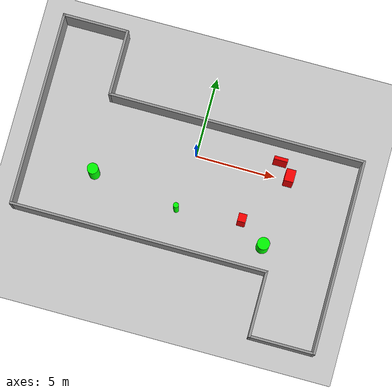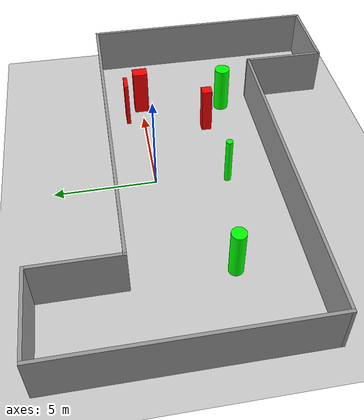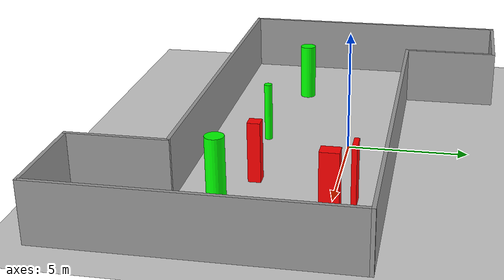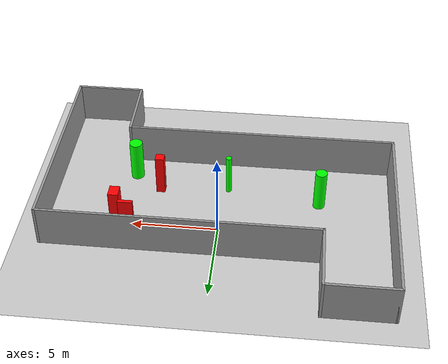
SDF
<sdf version="1.7">
 <world name="default">
  <light name="sun" type="directional">
   <pose>0 0 10 0 -0 0</pose>
   <diffuse>0.8 0.8 0.8 1</diffuse>
   <specular>0.2 0.2 0.2 1</specular>
   <attenuation>
    <range>1000</range>
    <constant>0.9</constant>
    <linear>0.01</linear>
    <quadratic>0.001</quadratic>
   </attenuation>
   <direction>-0.5 0.1 -0.9</direction>
   <spot><inner_angle>0</inner_angle><outer_angle>0</outer_angle><falloff>0</falloff></spot>
  </light>
  <model name="ground_plane">
   <static>1</static>
   <link name="link">
    <collision name="collision">
     <geometry><plane><normal>0 0 1</normal><size>100 100</size></plane></geometry>
     <surface>
      <contact><collide_bitmask>65535</collide_bitmask></contact>
      <friction><ode><mu>100</mu><mu2>50</mu2></ode></friction>
     </surface>
    </collision>
    <visual name="visual">
     <cast_shadows>0</cast_shadows>
     <geometry><plane><normal>0 0 1</normal><size>100 100</size></plane></geometry>
     <material>
      <script><uri>file://media/materials/scripts/gazebo.material</uri><name>Gazebo/Grey</name></script>
     </material>
    </visual>
   </link>
  </model>
  <gravity>0 0 -9.8</gravity>
  <magnetic_field>6e-06 2.3e-05 -4.2e-05</magnetic_field>
  <atmosphere type="adiabatic"/>
  <physics type="ode">
   <max_step_size>0.001</max_step_size>
   <real_time_factor>1</real_time_factor>
   <real_time_update_rate>1000</real_time_update_rate>
  </physics>
  <scene><ambient>0.4 0.4 0.4 1</ambient><background>0.7 0.7 0.7 1</background><shadows>1</shadows></scene>
  <spherical_coordinates>
   <surface_model>EARTH_WGS84</surface_model>
   <latitude_deg>0</latitude_deg>
   <longitude_deg>0</longitude_deg>
   <elevation>0</elevation>
   <heading_deg>0</heading_deg>
  </spherical_coordinates>
  <model name="my_base_walls">
   <link name="Wall_13">
    <collision name="Wall_13_Collision">
     <geometry><box><size>12.15 0.15 2.5</size></box></geometry>
     <pose>0 0 1.25 0 -0 0</pose>
    </collision>
    <visual name="Wall_13_Visual">
     <pose>0 0 1.25 0 -0 0</pose>
     <geometry><box><size>12.15 0.15 2.5</size></box></geometry>
     <material>
      <script><uri>file://media/materials/scripts/gazebo.material</uri><name>Gazebo/Grey</name></script>
      <ambient>1 1 1 1</ambient>
     </material>
     <meta><layer>0</layer></meta>
    </visual>
    <pose>10 -2 0 0 -0 1.5708</pose>
   </link>
   <link name="Wall_15">
    <collision name="Wall_15_Collision">
     <geometry><box><size>16.15 0.15 2.5</size></box></geometry>
     <pose>0 0 1.25 0 -0 0</pose>
    </collision>
    <visual name="Wall_15_Visual">
     <pose>0 0 1.25 0 -0 0</pose>
     <geometry><box><size>16.15 0.15 2.5</size></box></geometry>
     <material>
      <script><uri>file://media/materials/scripts/gazebo.material</uri><name>Gazebo/Grey</name></script>
      <ambient>1 1 1 1</ambient>
     </material>
     <meta><layer>0</layer></meta>
    </visual>
    <pose>2 4 0 0 -0 3.14159</pose>
   </link>
   <link name="Wall_17">
    <collision name="Wall_17_Collision">
     <geometry><box><size>4.15 0.15 2.5</size></box></geometry>
     <pose>0 0 1.25 0 -0 0</pose>
    </collision>
    <visual name="Wall_17_Visual">
     <pose>0 0 1.25 0 -0 0</pose>
     <geometry><box><size>4.15 0.15 2.5</size></box></geometry>
     <material>
      <script><uri>file://media/materials/scripts/gazebo.material</uri><name>Gazebo/Grey</name></script>
      <ambient>1 1 1 1</ambient>
     </material>
     <meta><layer>0</layer></meta>
    </visual>
    <pose>6 -6 0 0 -0 -1.5708</pose>
   </link>
   <link name="Wall_19">
    <collision name="Wall_19_Collision">
     <geometry><box><size>12.15 0.15 2.5</size></box></geometry>
     <pose>0 0 1.25 0 -0 0</pose>
    </collision>
    <visual name="Wall_19_Visual">
     <pose>0 0 1.25 0 -0 0</pose>
     <geometry><box><size>12.15 0.15 2.5</size></box></geometry>
     <material>
      <script><uri>file://media/materials/scripts/gazebo.material</uri><name>Gazebo/Grey</name></script>
      <ambient>1 1 1 1</ambient>
     </material>
     <meta><layer>0</layer></meta>
    </visual>
    <pose>-10 2 0 0 -0 1.5708</pose>
   </link>
   <link name="Wall_21">
    <collision name="Wall_21_Collision">
     <geometry><box><size>4.15 0.15 2.5</size></box></geometry>
     <pose>0 0 1.25 0 -0 0</pose>
    </collision>
    <visual name="Wall_21_Visual">
     <pose>0 0 1.25 0 -0 0</pose>
     <geometry><box><size>4.15 0.15 2.5</size></box></geometry>
     <material>
      <script><uri>file://media/materials/scripts/gazebo.material</uri><name>Gazebo/Grey</name></script>
      <ambient>1 1 1 1</ambient>
     </material>
     <meta><layer>0</layer></meta>
    </visual>
    <pose>-8 8 0 0 -0 0</pose>
   </link>
   <link name="Wall_23">
    <collision name="Wall_23_Collision">
     <geometry><box><size>4.15 0.15 2.5</size></box></geometry>
     <pose>0 0 1.25 0 -0 0</pose>
    </collision>
    <visual name="Wall_23_Visual">
     <pose>0 0 1.25 0 -0 0</pose>
     <geometry><box><size>4.15 0.15 2.5</size></box></geometry>
     <material>
      <script><uri>file://media/materials/scripts/gazebo.material</uri><name>Gazebo/Grey</name></script>
      <ambient>1 1 1 1</ambient>
     </material>
     <meta><layer>0</layer></meta>
    </visual>
    <pose>-6 6 0 0 -0 -1.5708</pose>
   </link>
   <link name="Wall_25">
    <collision name="Wall_25_Collision">
     <geometry><box><size>4.15 0.15 2.5</size></box></geometry>
     <pose>0 0 1.25 0 -0 0</pose>
    </collision>
    <visual name="Wall_25_Visual">
     <pose>0 0 1.25 0 -0 0</pose>
     <geometry><box><size>4.15 0.15 2.5</size></box></geometry>
     <material>
      <script><uri>file://media/materials/scripts/gazebo.material</uri><name>Gazebo/Grey</name></script>
      <ambient>1 1 1 1</ambient>
     </material>
     <meta><layer>0</layer></meta>
    </visual>
    <pose>8 -8 0 0 -0 0</pose>
   </link>
   <link name="Wall_9">
    <collision name="Wall_9_Collision">
     <geometry><box><size>16.15 0.15 2.5</size></box></geometry>
     <pose>0 0 1.25 0 -0 0</pose>
    </collision>
    <visual name="Wall_9_Visual">
     <pose>0 0 1.25 0 -0 0</pose>
     <geometry><box><size>16.15 0.15 2.5</size></box></geometry>
     <material>
      <script><uri>file://media/materials/scripts/gazebo.material</uri><name>Gazebo/Grey</name></script>
      <ambient>1 1 1 1</ambient>
     </material>
     <meta><layer>0</layer></meta>
    </visual>
    <pose>-2 -4 0 0 -0 3.14159</pose>
   </link>
   <static>1</static>
   <pose>-0 -2 0 0 -0 0</pose>
  </model>
  <model name="cylinder1">
   <static>1</static>
   <link name="link">
    <inertial>
     <mass>1</mass>
     <inertia><ixx>0.5</ixx><ixy>0</ixy><ixz>0</ixz><iyy>0.5</iyy><iyz>0</iyz><izz>1</izz></inertia>
    </inertial>
    <collision name="collision">
     <geometry><cylinder><radius>0.38877010765947284</radius><length>2.5</length></cylinder></geometry>
    </collision>
    <visual name="visual">
     <geometry><cylinder><radius>0.38877010765947284</radius><length>2.5</length></cylinder></geometry>
     <material>
      <ambient>0 1 0 1</ambient>
      <diffuse>0 1 0 1</diffuse>
      <specular>0.1 0.1 0.1 1</specular>
      <emissive>0 0 0 0</emissive>
     </material>
    </visual>
   </link>
   <pose>5.3802419129338634 -4.403815438704677 1.25 0 0 0</pose>
  </model>
  <model name="cylinder2">
   <static>1</static>
   <link name="link">
    <inertial>
     <mass>1</mass>
     <inertia><ixx>0.5</ixx><ixy>0</ixy><ixz>0</ixz><iyy>0.5</iyy><iyz>0</iyz><izz>1</izz></inertia>
    </inertial>
    <collision name="collision">
     <geometry><cylinder><radius>0.3430526247873592</radius><length>2.5</length></cylinder></geometry>
    </collision>
    <visual name="visual">
     <geometry><cylinder><radius>0.3430526247873592</radius><length>2.5</length></cylinder></geometry>
     <material>
      <ambient>0 1 0 1</ambient>
      <diffuse>0 1 0 1</diffuse>
      <specular>0.1 0.1 0.1 1</specular>
      <emissive>0 0 0 0</emissive>
     </material>
    </visual>
   </link>
   <pose>-5.7752204018050834 -2.6968872143851055 1.25 0 0 0</pose>
  </model>
  <model name="cylinder3">
   <static>1</static>
   <link name="link">
    <inertial>
     <mass>1</mass>
     <inertia><ixx>0.5</ixx><ixy>0</ixy><ixz>0</ixz><iyy>0.5</iyy><iyz>0</iyz><izz>1</izz></inertia>
    </inertial>
    <collision name="collision">
     <geometry><cylinder><radius>0.16793779204499173</radius><length>2.5</length></cylinder></geometry>
    </collision>
    <visual name="visual">
     <geometry><cylinder><radius>0.16793779204499173</radius><length>2.5</length></cylinder></geometry>
     <material>
      <ambient>0 1 0 1</ambient>
      <diffuse>0 1 0 1</diffuse>
      <specular>0.1 0.1 0.1 1</specular>
      <emissive>0 0 0 0</emissive>
     </material>
    </visual>
   </link>
   <pose>-0.3241778665130264 -3.5331468286026073 1.25 0 0 0</pose>
  </model>
  <model name="box1">
   <static>1</static>
   <link name="link">
    <inertial>
     <mass>1</mass>
     <inertia><ixx>0.083</ixx><ixy>0</ixy><ixz>0</ixz><iyy>0.083</iyy><iyz>0</iyz><izz>0.083</izz></inertia>
    </inertial>
    <collision name="collision">
     <geometry><box><size>0.513239610042793 0.5153543109790506 2.5</size></box></geometry>
    </collision>
    <visual name="visual">
     <geometry><box><size>0.513239610042793 0.5153543109790506 2.5</size></box></geometry>
     <material>
      <ambient>1 0 0 1</ambient>
      <diffuse>1 0 0 1</diffuse>
      <specular>0.1 0.1 0.1 1</specular>
      <emissive>0 0 0 0</emissive>
     </material>
    </visual>
    <sensor name="my_contact" type="contact">
     <contact><collision>box_collision</collision><topic>__default_topic__</topic></contact>
    </sensor>
   </link>
   <pose>3.7451978800009975 -3.2271708367615437 1.25 0 0 0</pose>
  </model>
  <model name="box2">
   <static>1</static>
   <link name="link">
    <inertial>
     <mass>1</mass>
     <inertia><ixx>0.083</ixx><ixy>0</ixy><ixz>0</ixz><iyy>0.083</iyy><iyz>0</iyz><izz>0.083</izz></inertia>
    </inertial>
    <collision name="collision">
     <geometry><box><size>0.5842098441133984 0.7633629050265127 2.5</size></box></geometry>
    </collision>
    <visual name="visual">
     <geometry><box><size>0.5842098441133984 0.7633629050265127 2.5</size></box></geometry>
     <material>
      <ambient>1 0 0 1</ambient>
      <diffuse>1 0 0 1</diffuse>
      <specular>0.1 0.1 0.1 1</specular>
      <emissive>0 0 0 0</emissive>
     </material>
    </visual>
    <sensor name="my_contact" type="contact">
     <contact><collision>box_collision</collision><topic>__default_topic__</topic></contact>
    </sensor>
   </link>
   <pose>5.877026972680039 0.021658462694318814 1.25 0 0 0</pose>
  </model>
  <model name="box3">
   <static>1</static>
   <link name="link">
    <inertial>
     <mass>1</mass>
     <inertia><ixx>0.083</ixx><ixy>0</ixy><ixz>0</ixz><iyy>0.083</iyy><iyz>0</iyz><izz>0.083</izz></inertia>
    </inertial>
    <collision name="collision">
     <geometry><box><size>0.8536156415208362 0.20110318448642728 2.5</size></box></geometry>
    </collision>
    <visual name="visual">
     <geometry><box><size>0.8536156415208362 0.20110318448642728 2.5</size></box></geometry>
     <material>
      <ambient>1 0 0 1</ambient>
      <diffuse>1 0 0 1</diffuse>
      <specular>0.1 0.1 0.1 1</specular>
      <emissive>0 0 0 0</emissive>
     </material>
    </visual>
    <sensor name="my_contact" type="contact">
     <contact><collision>box_collision</collision><topic>__default_topic__</topic></contact>
    </sensor>
   </link>
   <pose>5.096359012458594 0.8536179120550722 1.25 0 0 0</pose>
  </model>
 </world>
</sdf>
